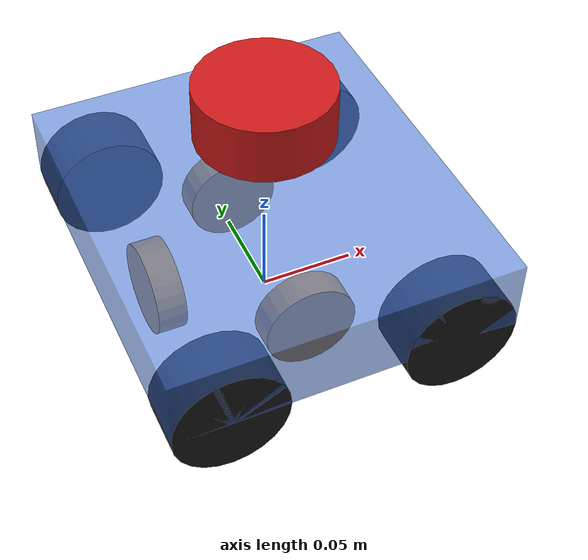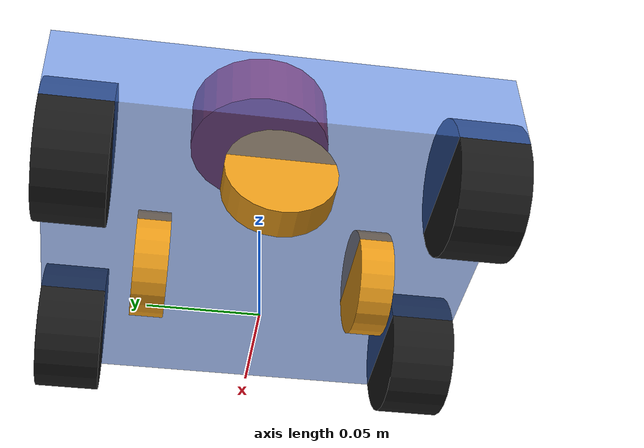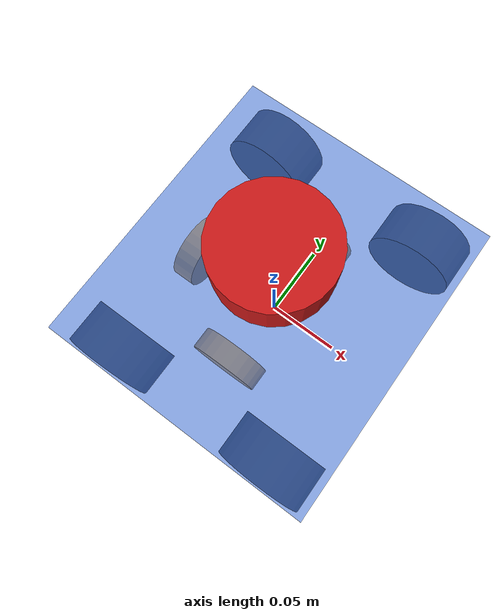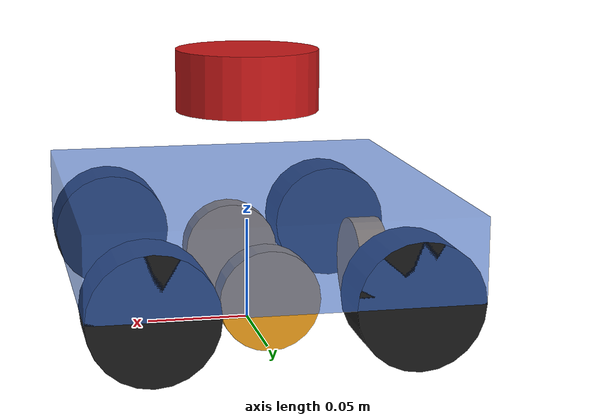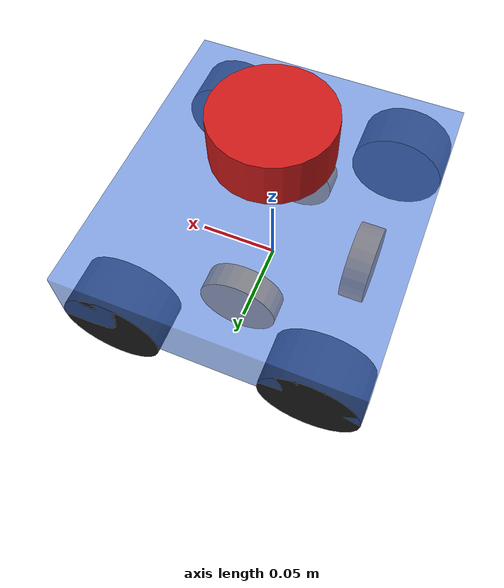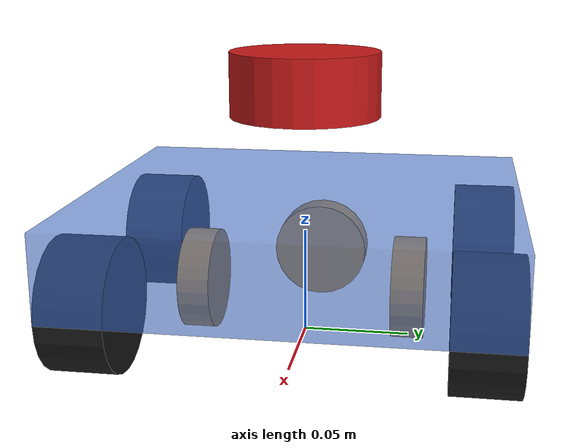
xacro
<?xml version="1.0"?>
<robot name="aicontest_rover" xmlns:xacro="http://ros.org/wiki/xacro">

  <!-- ==================== 寸法(仮) ==================== -->
  <xacro:property name="body_x"          value="0.18"/>   <!-- 奥行き 180mm(決定) -->
  <xacro:property name="body_y"          value="0.20"/>   <!-- 幅 200mm(決定) -->
  <xacro:property name="mecanum_radius"  value="0.03"/>   <!-- メカナム 直径60mm -->
  <xacro:property name="mecanum_width"   value="0.03"/>
  <xacro:property name="wheel_x"         value="0.06"/>   <!-- 前後の車輪間隔 120mm の半分(仮) -->
  <xacro:property name="wheel_y"         value="0.085"/>  <!-- 左右の車輪間隔 170mm の半分(仮) -->
  <xacro:property name="odom_radius"     value="0.024"/>  <!-- 計測輪 直径48mm(仮) -->
  <xacro:property name="odom_width"      value="0.015"/>
  <xacro:property name="odom_y"          value="0.05"/>   <!-- 前後向き計測輪の左右位置(仮) -->
  <xacro:property name="odom_side_x"     value="-0.06"/>  <!-- 横向き計測輪の前後位置(仮) -->
  <xacro:property name="lidar_z"         value="0.12"/>   <!-- LiDARの高さ(仮) -->
  <xacro:property name="PI"              value="3.14159265359"/>

  <material name="body"><color rgba="0.25 0.45 0.85 0.6"/></material>
  <material name="wheel"><color rgba="0.1 0.1 0.1 1.0"/></material>
  <material name="odom"><color rgba="0.9 0.6 0.1 1.0"/></material>
  <material name="lidar"><color rgba="0.8 0.1 0.1 1.0"/></material>

  <link name="base_link">
    <visual>
      <origin xyz="0 0 0.05"/>
      <geometry><box size="${body_x} ${body_y} 0.04"/></geometry>
      <material name="body"/>
    </visual>
  </link>

  <xacro:macro name="mecanum" params="name x y roller_yaw">
    <link name="${name}_base_link"/>
    <joint name="${name}_base" type="fixed">
      <parent link="base_link"/>
      <child link="${name}_base_link"/>
      <origin xyz="${x} ${y} ${mecanum_radius}" rpy="0 0 ${roller_yaw}"/>
    </joint>
    <link name="${name}_link">
      <visual>
        <origin rpy="${PI/2} 0 0"/>
        <geometry><cylinder radius="${mecanum_radius}" length="${mecanum_width}"/></geometry>
        <material name="wheel"/>
      </visual>
    </link>
    <joint name="${name}" type="continuous">
      <parent link="${name}_base_link"/>
      <child link="${name}_link"/>
      <origin rpy="0 0 ${-roller_yaw}"/>
      <axis xyz="0 1 0"/>
    </joint>
  </xacro:macro>

  <xacro:mecanum name="mecanum_fl" x="${ wheel_x}" y="${ wheel_y}" roller_yaw="${-PI/4}"/>
  <xacro:mecanum name="mecanum_fr" x="${ wheel_x}" y="${-wheel_y}" roller_yaw="${ PI/4}"/>
  <xacro:mecanum name="mecanum_rl" x="${-wheel_x}" y="${ wheel_y}" roller_yaw="${ PI/4}"/>
  <xacro:mecanum name="mecanum_rr" x="${-wheel_x}" y="${-wheel_y}" roller_yaw="${-PI/4}"/>

  <xacro:macro name="odom_wheel" params="name x y yaw">
    <link name="${name}_base_link"/>
    <joint name="${name}_base" type="fixed">
      <parent link="base_link"/>
      <child link="${name}_base_link"/>
      <origin xyz="${x} ${y} ${odom_radius}" rpy="0 0 ${yaw}"/>
    </joint>
    <link name="${name}_link">
      <visual>
        <origin rpy="${PI/2} 0 0"/>
        <geometry><cylinder radius="${odom_radius}" length="${odom_width}"/></geometry>
        <material name="odom"/>
      </visual>
    </link>
    <joint name="${name}" type="continuous">
      <parent link="${name}_base_link"/>
      <child link="${name}_link"/>
      <axis xyz="0 1 0"/>
    </joint>
  </xacro:macro>

  <xacro:odom_wheel name="odom_wheel_l" x="0.0"            y="${ odom_y}"      yaw="0.0"/>      <!-- 前後向き 左 -->
  <xacro:odom_wheel name="odom_wheel_r" x="0.0"            y="${-odom_y}"      yaw="0.0"/>      <!-- 前後向き 右 -->
  <xacro:odom_wheel name="odom_wheel_s" x="${odom_side_x}" y="0.0"            yaw="${PI/2}"/>  <!-- 横向き -->

  <link name="lidar_front">
    <visual>
      <geometry><cylinder radius="0.035" length="0.03"/></geometry>
      <material name="lidar"/>
    </visual>
  </link>
  <joint name="base_to_lidar_front" type="fixed">
    <parent link="base_link"/>
    <child link="lidar_front"/>
    <origin xyz="0 0 ${lidar_z}" rpy="0 0 0"/>
  </joint>
</robot>
